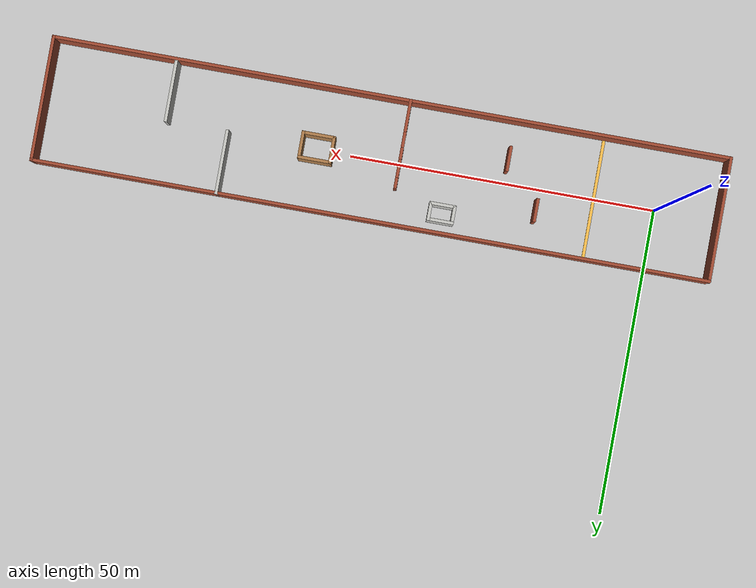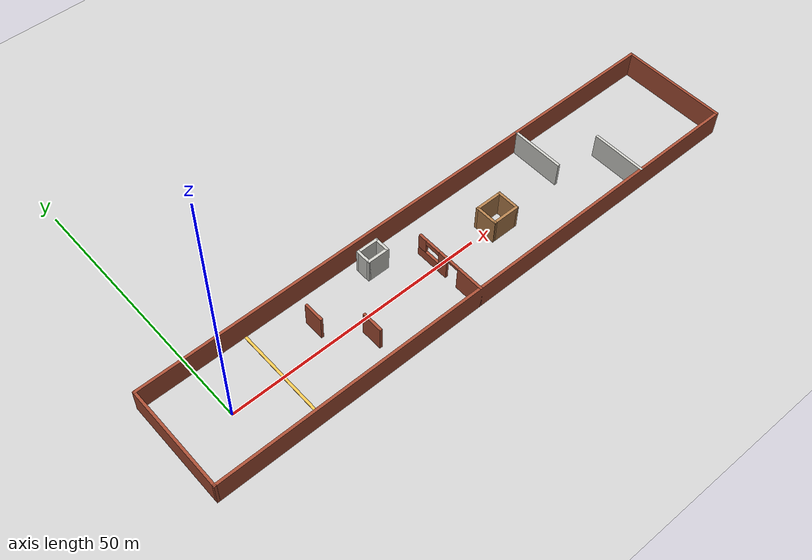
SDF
<sdf version="1.6">
 <world name="default">
  <light name="sun" type="directional">
   <pose>0 0 10 0 -0 0</pose>
   <diffuse>0.8 0.8 0.8 1</diffuse>
   <specular>0.2 0.2 0.2 1</specular>
   <attenuation>
    <range>1000</range>
    <constant>0.9</constant>
    <linear>0.01</linear>
    <quadratic>0.001</quadratic>
   </attenuation>
   <direction>-0.5 0.1 -0.9</direction>
  </light>
  <model name="ground_plane">
   <static>1</static>
   <link name="link">
    <collision name="collision">
     <geometry><plane><normal>0 0 1</normal><size>300 100</size></plane></geometry>
     <surface><friction><ode><mu>100</mu><mu2>50</mu2></ode></friction></surface>
    </collision>
    <visual name="visual">
     <cast_shadows>0</cast_shadows>
     <geometry><plane><normal>0 0 1</normal><size>300 100</size></plane></geometry>
     <material>
      <script><uri>file://media/materials/scripts/gazebo.material</uri><name>Gazebo/Grey</name></script>
     </material>
    </visual>
   </link>
  </model>
  <gravity>0 0 -9.8</gravity>
  <magnetic_field>6e-06 2.3e-05 -4.2e-05</magnetic_field>
  <atmosphere type="adiabatic"/>
  <physics name="default_physics" default="0" type="ode">
   <max_step_size>0.001</max_step_size>
   <real_time_factor>1</real_time_factor>
   <real_time_update_rate>1000</real_time_update_rate>
  </physics>
  <scene><ambient>0.4 0.4 0.4 1</ambient><background>0.7 0.7 0.7 1</background><shadows>1</shadows></scene>
  <audio><device>default</device></audio>
  <spherical_coordinates>
   <surface_model>EARTH_WGS84</surface_model>
   <latitude_deg>0</latitude_deg>
   <longitude_deg>0</longitude_deg>
   <elevation>0</elevation>
   <heading_deg>0</heading_deg>
  </spherical_coordinates>
  <model name="ceiling">
   <link name="link">
    <inertial>
     <mass>100000</mass>
     <inertia><ixx>100000</ixx><ixy>0</ixy><ixz>0</ixz><iyy>100000</iyy><iyz>0</iyz><izz>100000</izz></inertia>
    </inertial>
    <collision name="collision">
     <geometry><box><size>300 300 0.5</size></box></geometry>
     <friction><ode><mu>1</mu><mu2>1</mu2></ode></friction>
     <contact><ode><kp>1e+07</kp><kd>1</kd><min_depth>0.001</min_depth><max_vel>0.1</max_vel></ode></contact>
    </collision>
   </link>
   <pose>0 0 5 0 0 0</pose>
  </model>
  <model name="indoor6">
   <pose>45 0 0 0 -0 0</pose>
   <link name="Wall_0">
    <collision name="Wall_0_Collision">
     <geometry><box><size>20.5 0.5 5</size></box></geometry>
     <pose>0 0 2.5 0 -0 0</pose>
    </collision>
    <visual name="Wall_0_Visual">
     <pose>0 0 2.5 0 -0 0</pose>
     <geometry><box><size>20.5 0.5 5</size></box></geometry>
     <material>
      <script><uri>file://media/materials/scripts/gazebo.material</uri><name>Gazebo/Bricks</name></script>
      <ambient>1 1 1 1</ambient>
     </material>
     <meta><layer>0</layer></meta>
    </visual>
    <pose>-55 0 0 0 -0 1.5708</pose>
   </link>
   <link name="Wall_1">
    <collision name="Wall_1_Collision">
     <geometry><box><size>110.5 0.5 5</size></box></geometry>
     <pose>0 0 2.5 0 -0 0</pose>
    </collision>
    <visual name="Wall_1_Visual">
     <pose>0 0 2.5 0 -0 0</pose>
     <geometry><box><size>110.5 0.5 5</size></box></geometry>
     <material>
      <script><uri>file://media/materials/scripts/gazebo.material</uri><name>Gazebo/Bricks</name></script>
      <ambient>1 1 1 1</ambient>
     </material>
     <meta><layer>0</layer></meta>
    </visual>
    <pose>0 10 0 0 -0 0</pose>
   </link>
   <link name="Wall_12">
    <collision name="Wall_12_Collision">
     <geometry><box><size>4.35044 0.5 5</size></box></geometry>
     <pose>0 0 2.5 0 -0 0</pose>
    </collision>
    <visual name="Wall_12_Visual">
     <pose>0 0 2.5 0 -0 0</pose>
     <geometry><box><size>4.35044 0.5 5</size></box></geometry>
     <material>
      <script><uri>file://media/materials/scripts/gazebo.material</uri><name>Gazebo/CeilingTiled</name></script>
      <ambient>1 1 1 1</ambient>
     </material>
     <meta><layer>0</layer></meta>
    </visual>
    <pose>-11.01 8.1 0 0 -0 0</pose>
   </link>
   <link name="Wall_13">
    <collision name="Wall_13_Collision">
     <geometry><box><size>3.1 0.5 5</size></box></geometry>
     <pose>0 0 2.5 0 -0 0</pose>
    </collision>
    <visual name="Wall_13_Visual">
     <pose>0 0 2.5 0 -0 0</pose>
     <geometry><box><size>3.1 0.5 5</size></box></geometry>
     <material>
      <script><uri>file://media/materials/scripts/gazebo.material</uri><name>Gazebo/CeilingTiled</name></script>
      <ambient>1 1 1 1</ambient>
     </material>
     <meta><layer>0</layer></meta>
    </visual>
    <pose>-9.085 6.8 0 0 -0 -1.5708</pose>
   </link>
   <link name="Wall_14">
    <collision name="Wall_14_Collision">
     <geometry><box><size>4.35 0.5 5</size></box></geometry>
     <pose>0 0 2.5 0 -0 0</pose>
    </collision>
    <visual name="Wall_14_Visual">
     <pose>0 0 2.5 0 -0 0</pose>
     <geometry><box><size>4.35 0.5 5</size></box></geometry>
     <material>
      <script><uri>file://media/materials/scripts/gazebo.material</uri><name>Gazebo/CeilingTiled</name></script>
      <ambient>1 1 1 1</ambient>
     </material>
     <meta><layer>0</layer></meta>
    </visual>
    <pose>-11.01 5.5 0 0 -0 3.14159</pose>
   </link>
   <link name="Wall_15">
    <collision name="Wall_15_Collision">
     <geometry><box><size>3.1 0.5 5</size></box></geometry>
     <pose>0 0 2.5 0 -0 0</pose>
    </collision>
    <visual name="Wall_15_Visual">
     <pose>0 0 2.5 0 -0 0</pose>
     <geometry><box><size>3.1 0.5 5</size></box></geometry>
     <material>
      <script><uri>file://media/materials/scripts/gazebo.material</uri><name>Gazebo/CeilingTiled</name></script>
      <ambient>1 1 1 1</ambient>
     </material>
     <meta><layer>0</layer></meta>
    </visual>
    <pose>-12.935 6.8 0 0 -0 1.5708</pose>
   </link>
   <link name="Wall_17">
    <pose>-3 -3 0 0 -0 1.5708</pose>
    <visual name="Wall_17_Visual_0">
     <pose>-4.58013 0 2.5 0 -0 0</pose>
     <geometry><box><size>5.33973 0.5 5</size></box></geometry>
     <material>
      <script><uri>file://media/materials/scripts/gazebo.material</uri><name>Gazebo/Bricks</name></script>
      <ambient>1 1 1 1</ambient>
     </material>
     <meta><layer>0</layer></meta>
    </visual>
    <collision name="Wall_17_Collision_0">
     <geometry><box><size>5.33973 0.5 5</size></box></geometry>
     <pose>-4.58013 0 2.5 0 -0 0</pose>
    </collision>
    <visual name="Wall_17_Visual_1">
     <pose>1.54487 0 2.5 0 -0 0</pose>
     <geometry><box><size>1.91027 0.5 5</size></box></geometry>
     <material>
      <script><uri>file://media/materials/scripts/gazebo.material</uri><name>Gazebo/Bricks</name></script>
      <ambient>1 1 1 1</ambient>
     </material>
     <meta><layer>0</layer></meta>
    </visual>
    <collision name="Wall_17_Collision_1">
     <geometry><box><size>1.91027 0.5 5</size></box></geometry>
     <pose>1.54487 0 2.5 0 -0 0</pose>
    </collision>
    <visual name="Wall_17_Visual_2">
     <pose>4.875 0 1 0 -0 0</pose>
     <geometry><box><size>4.75 0.5 2</size></box></geometry>
     <material>
      <script><uri>file://media/materials/scripts/gazebo.material</uri><name>Gazebo/Bricks</name></script>
      <ambient>1 1 1 1</ambient>
     </material>
     <meta><layer>0</layer></meta>
    </visual>
    <collision name="Wall_17_Collision_2">
     <geometry><box><size>4.75 0.5 2</size></box></geometry>
     <pose>4.875 0 1 0 -0 0</pose>
    </collision>
    <visual name="Wall_17_Visual_3">
     <pose>6.375 0 3.5 0 -0 0</pose>
     <geometry><box><size>1.75 0.5 3</size></box></geometry>
     <material>
      <script><uri>file://media/materials/scripts/gazebo.material</uri><name>Gazebo/Bricks</name></script>
      <ambient>1 1 1 1</ambient>
     </material>
     <meta><layer>0</layer></meta>
    </visual>
    <collision name="Wall_17_Collision_3">
     <geometry><box><size>1.75 0.5 3</size></box></geometry>
     <pose>6.375 0 3.5 0 -0 0</pose>
    </collision>
    <visual name="Wall_17_Visual_4">
     <pose>4 0 4.5 0 -0 0</pose>
     <geometry><box><size>3 0.5 1</size></box></geometry>
     <material>
      <script><uri>file://media/materials/scripts/gazebo.material</uri><name>Gazebo/Bricks</name></script>
      <ambient>1 1 1 1</ambient>
     </material>
     <meta><layer>0</layer></meta>
    </visual>
    <collision name="Wall_17_Collision_4">
     <geometry><box><size>3 0.5 1</size></box></geometry>
     <pose>4 0 4.5 0 -0 0</pose>
    </collision>
    <visual name="Wall_17_Visual_5">
     <pose>-0.660267 0 4.75 0 -0 0</pose>
     <geometry><box><size>2.5 0.5 0.5</size></box></geometry>
     <material>
      <script><uri>file://media/materials/scripts/gazebo.material</uri><name>Gazebo/Bricks</name></script>
      <ambient>1 1 1 1</ambient>
     </material>
     <meta><layer>0</layer></meta>
    </visual>
    <collision name="Wall_17_Collision_5">
     <geometry><box><size>2.5 0.5 0.5</size></box></geometry>
     <pose>-0.660267 0 4.75 0 -0 0</pose>
    </collision>
   </link>
   <link name="Wall_19">
    <collision name="Wall_19_Collision">
     <geometry><box><size>4.5 0.5 5</size></box></geometry>
     <pose>0 0 2.5 0 -0 0</pose>
    </collision>
    <visual name="Wall_19_Visual">
     <pose>0 0 2.5 0 -0 0</pose>
     <geometry><box><size>4.5 0.5 5</size></box></geometry>
     <material>
      <script><uri>file://media/materials/scripts/gazebo.material</uri><name>Gazebo/Wood</name></script>
      <ambient>1 1 1 1</ambient>
     </material>
     <meta><layer>0</layer></meta>
    </visual>
    <pose>8 0 0 0 -0 -1.5708</pose>
   </link>
   <link name="Wall_2">
    <collision name="Wall_2_Collision">
     <geometry><box><size>20.5 0.5 5</size></box></geometry>
     <pose>0 0 2.5 0 -0 0</pose>
    </collision>
    <visual name="Wall_2_Visual">
     <pose>0 0 2.5 0 -0 0</pose>
     <geometry><box><size>20.5 0.5 5</size></box></geometry>
     <material>
      <script><uri>file://media/materials/scripts/gazebo.material</uri><name>Gazebo/Bricks</name></script>
      <ambient>1 1 1 1</ambient>
     </material>
     <meta><layer>0</layer></meta>
    </visual>
    <pose>55 0 0 0 -0 -1.5708</pose>
   </link>
   <link name="Wall_20">
    <collision name="Wall_20_Collision">
     <geometry><box><size>5.5 0.5 5</size></box></geometry>
     <pose>0 0 2.5 0 -0 0</pose>
    </collision>
    <visual name="Wall_20_Visual">
     <pose>0 0 2.5 0 -0 0</pose>
     <geometry><box><size>5.5 0.5 5</size></box></geometry>
     <material>
      <script><uri>file://media/materials/scripts/gazebo.material</uri><name>Gazebo/Wood</name></script>
      <ambient>1 1 1 1</ambient>
     </material>
     <meta><layer>0</layer></meta>
    </visual>
    <pose>10.5 -2 0 0 -0 0</pose>
   </link>
   <link name="Wall_21">
    <collision name="Wall_21_Collision">
     <geometry><box><size>4.5 0.5 5</size></box></geometry>
     <pose>0 0 2.5 0 -0 0</pose>
    </collision>
    <visual name="Wall_21_Visual">
     <pose>0 0 2.5 0 -0 0</pose>
     <geometry><box><size>4.5 0.5 5</size></box></geometry>
     <material>
      <script><uri>file://media/materials/scripts/gazebo.material</uri><name>Gazebo/Wood</name></script>
      <ambient>1 1 1 1</ambient>
     </material>
     <meta><layer>0</layer></meta>
    </visual>
    <pose>13 0 0 0 -0 1.5708</pose>
   </link>
   <link name="Wall_24">
    <collision name="Wall_24_Collision">
     <geometry><box><size>5.5 0.5 5</size></box></geometry>
     <pose>0 0 2.5 0 -0 0</pose>
    </collision>
    <visual name="Wall_24_Visual">
     <pose>0 0 2.5 0 -0 0</pose>
     <geometry><box><size>5.5 0.5 5</size></box></geometry>
     <material>
      <script><uri>file://media/materials/scripts/gazebo.material</uri><name>Gazebo/Wood</name></script>
      <ambient>1 1 1 1</ambient>
     </material>
     <meta><layer>0</layer></meta>
    </visual>
    <pose>10.5 2 0 0 -0 0</pose>
   </link>
   <link name="Wall_26">
    <collision name="Wall_26_Collision">
     <geometry><box><size>10.5 0.5 5</size></box></geometry>
     <pose>0 0 2.5 0 -0 0</pose>
    </collision>
    <visual name="Wall_26_Visual">
     <pose>0 0 2.5 0 -0 0</pose>
     <geometry><box><size>10.5 0.5 5</size></box></geometry>
     <material>
      <script><uri>file://media/materials/scripts/gazebo.material</uri><name>Gazebo/CeilingTiled</name></script>
      <ambient>1 1 1 1</ambient>
     </material>
     <meta><layer>0</layer></meta>
    </visual>
    <pose>25 5 0 0 -0 -1.5708</pose>
   </link>
   <link name="Wall_28">
    <collision name="Wall_28_Collision">
     <geometry><box><size>10.5 0.5 5</size></box></geometry>
     <pose>0 0 2.5 0 -0 0</pose>
    </collision>
    <visual name="Wall_28_Visual">
     <pose>0 0 2.5 0 -0 0</pose>
     <geometry><box><size>10.5 0.5 5</size></box></geometry>
     <material>
      <script><uri>file://media/materials/scripts/gazebo.material</uri><name>Gazebo/CeilingTiled</name></script>
      <ambient>1 1 1 1</ambient>
     </material>
     <meta><layer>0</layer></meta>
    </visual>
    <pose>35 -5 0 0 -0 -1.5708</pose>
   </link>
   <link name="Wall_3">
    <collision name="Wall_3_Collision">
     <geometry><box><size>110.5 0.5 5</size></box></geometry>
     <pose>0 0 2.5 0 -0 0</pose>
    </collision>
    <visual name="Wall_3_Visual">
     <pose>0 0 2.5 0 -0 0</pose>
     <geometry><box><size>110.5 0.5 5</size></box></geometry>
     <material>
      <script><uri>file://media/materials/scripts/gazebo.material</uri><name>Gazebo/Bricks</name></script>
      <ambient>1 1 1 1</ambient>
     </material>
     <meta><layer>0</layer></meta>
    </visual>
    <pose>0 -10 0 0 -0 3.14159</pose>
   </link>
   <link name="Wall_5">
    <collision name="Wall_5_Collision">
     <geometry><box><size>20.5 0.5 0.1</size></box></geometry>
     <pose>0 0 0.05 0 -0 0</pose>
    </collision>
    <visual name="Wall_5_Visual">
     <pose>0 0 0.05 0 -0 0</pose>
     <geometry><box><size>20.5 0.5 0.1</size></box></geometry>
     <material>
      <script><uri>file://media/materials/scripts/gazebo.material</uri><name>Gazebo/Grey</name></script>
      <ambient>1 0.764706 0.305882 1</ambient>
     </material>
     <meta><layer>0</layer></meta>
    </visual>
    <pose>-35 0 0 0 -0 1.5708</pose>
   </link>
   <link name="Wall_7">
    <collision name="Wall_7_Collision">
     <geometry><box><size>3.85042 0.5 5</size></box></geometry>
     <pose>0 0 2.5 0 -0 0</pose>
    </collision>
    <visual name="Wall_7_Visual">
     <pose>0 0 2.5 0 -0 0</pose>
     <geometry><box><size>3.85042 0.5 5</size></box></geometry>
     <material>
      <script><uri>file://media/materials/scripts/gazebo.material</uri><name>Gazebo/Bricks</name></script>
      <ambient>1 1 1 1</ambient>
     </material>
     <meta><layer>0</layer></meta>
    </visual>
    <pose>-25.812 3.699 0 0 -0 1.5708</pose>
   </link>
   <link name="Wall_9">
    <collision name="Wall_9_Collision">
     <geometry><box><size>4.10032 0.5 5</size></box></geometry>
     <pose>0 0 2.5 0 -0 0</pose>
    </collision>
    <visual name="Wall_9_Visual">
     <pose>0 0 2.5 0 -0 0</pose>
     <geometry><box><size>4.10032 0.5 5</size></box></geometry>
     <material>
      <script><uri>file://media/materials/scripts/gazebo.material</uri><name>Gazebo/Bricks</name></script>
      <ambient>1 1 1 1</ambient>
     </material>
     <meta><layer>0</layer></meta>
    </visual>
    <pose>-20.104 -3.662 0 0 -0 1.5708</pose>
   </link>
   <static>1</static>
  </model>
 </world>
</sdf>
